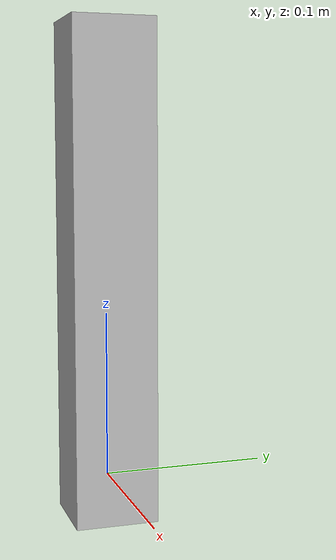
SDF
<?xml version="1.0" ?>
<sdf version="1.5">
  <model name="reflMarker">
    <link name="link">
      <pose>0 0 0.115 0 0 0</pose>
      <inertial>
        <mass>0.390</mass>
        <inertia>
          <ixx>0.00058</ixx>
          <ixy>0</ixy>
          <ixz>0</ixz>
          <iyy>0.00058</iyy>
          <iyz>0</iyz>
          <izz>0.00019</izz>
        </inertia>
      </inertial>
      <collision name='collision'>
        <pose>0 0 0.010000 0 0 0</pose>
        <laser_retro>2000</laser_retro>
        <geometry>
          <box>
            <size>0.050000 0.050000 0.300000</size>
          </box>
        </geometry>
      </collision>

      <visual name='visual'>
        <pose>0 0 0.010000 0 0 0</pose>
        <laser_retro>2000</laser_retro>
        <geometry>
          <box>
            <size>0.050000 0.050000 0.300000</size>
          </box>
        </geometry>

        <material>
          <script>
            <uri>model://reflMarker/materials/scripts</uri>
            <uri>model://reflMarker/materials/textures</uri>
            <name>ReflMarker/Diffuse</name>
          </script>
        </material>
      </visual>
    </link>
  </model>
</sdf>
